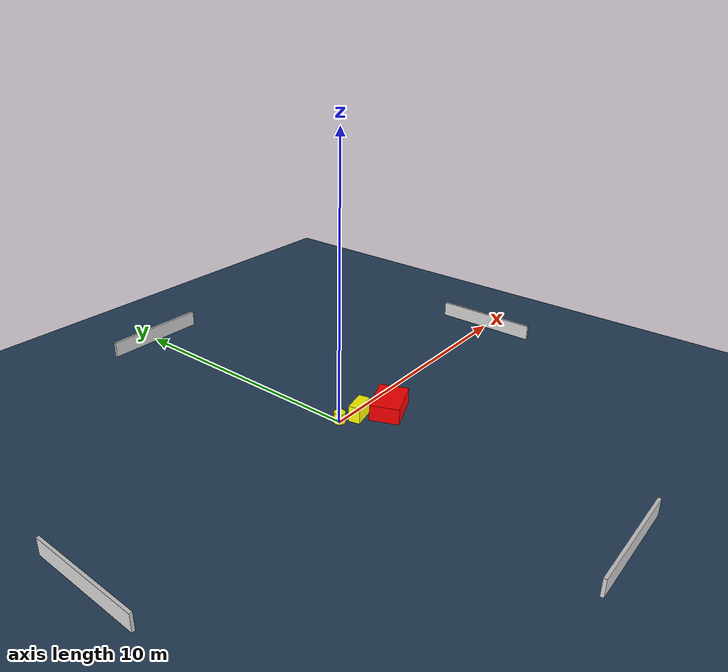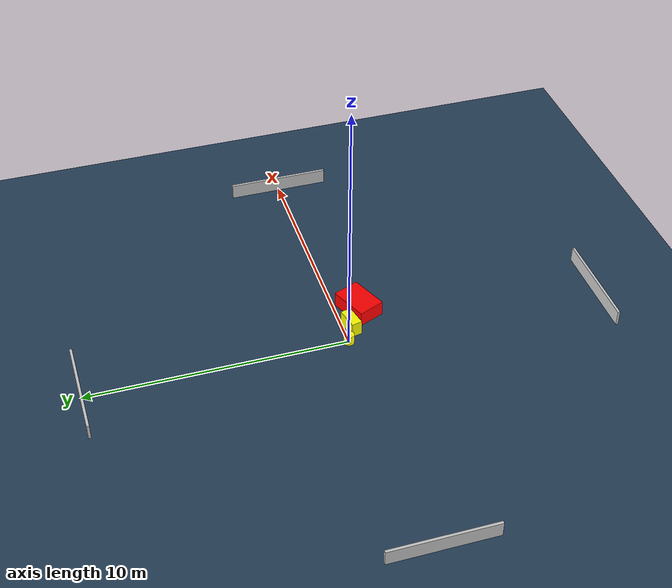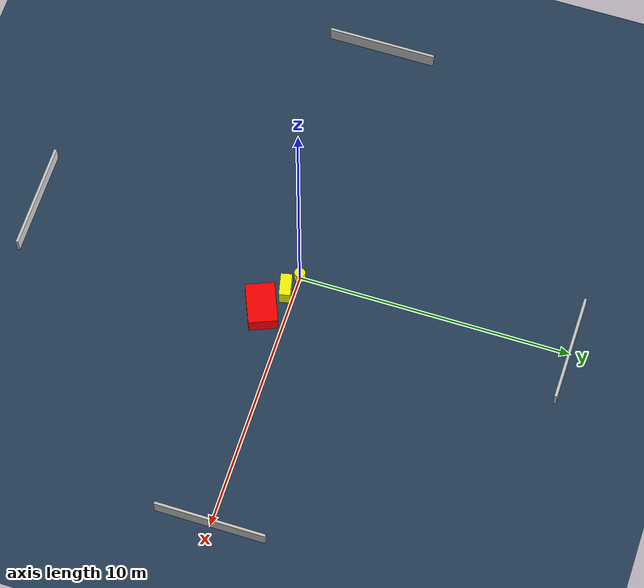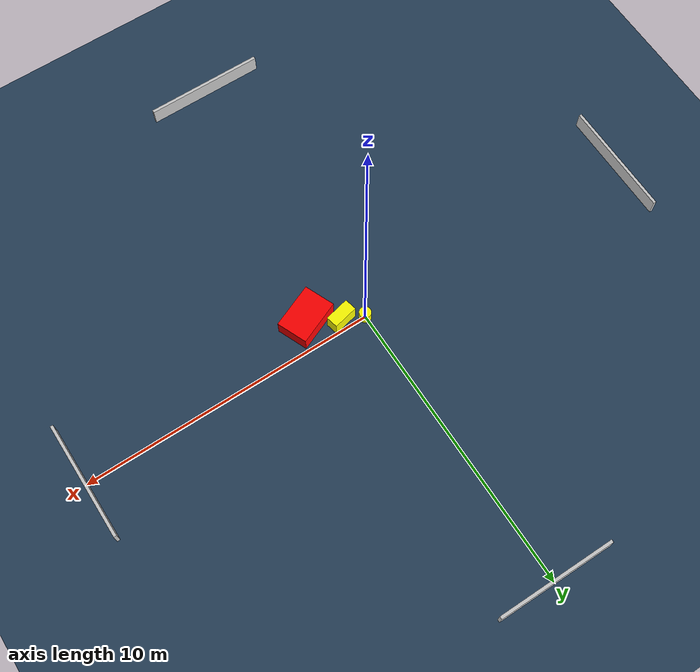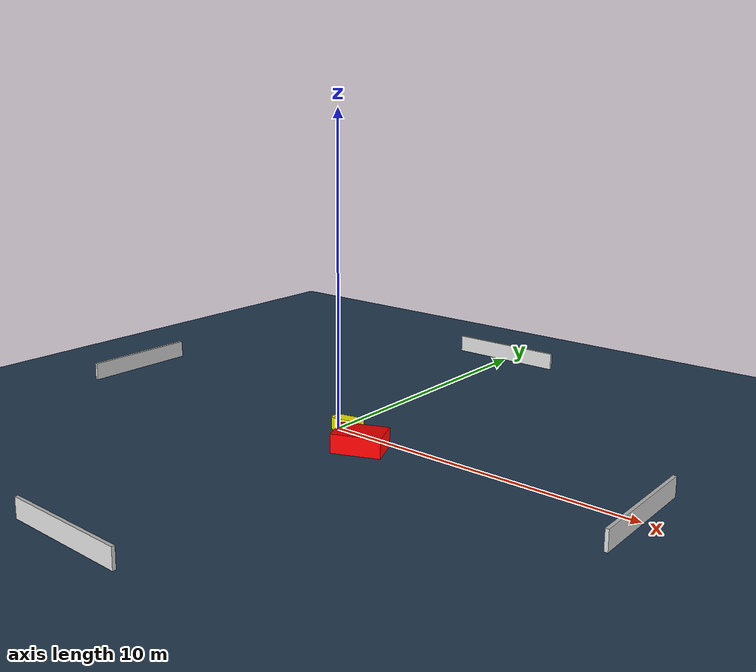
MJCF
<?xml version="1.0" ?>
<mujoco model="generated_environment">
  <option timestep="0.01" integrator="RK4" cone="elliptic"/>
  <default>
    <geom density="1"/>
  </default>
  <asset>
    <texture builtin="gradient" height="3072" name="skybox" rgb1="0.3 0.5 0.7" rgb2="0 0 0" type="skybox" width="512"/>
    <texture builtin="checker" height="300" name="groundplane" rgb1="0.2 0.3 0.4" rgb2="0.1 0.2 0.3" type="2d" width="300"/>
    <material name="groundplane" reflectance="0.2" texrepeat="5 5" texture="groundplane"/>
  </asset>
  <worldbody>
    <light dir="0 0 -1" directional="true" pos="0 0 1.5"/>
    <geom condim="3" friction="0.5 0.005 0.001" material="groundplane" name="floor" pos="0 0 0" size="0 0 0.05" type="plane"/>
    <body name="walls">
      <geom name="wall_1" condim="4" pos="-10.0 0.0 0.3" rgba="0.800000011920929 0.800000011920929 0.800000011920929 1.0" size="0.05 2.0 0.3" type="box"/>
      <geom name="wall_2" condim="4" pos="10.0 0.0 0.3" rgba="0.800000011920929 0.800000011920929 0.800000011920929 1.0" size="0.05 2.0 0.3" type="box"/>
      <geom name="wall_3" condim="4" pos="0.0 -10.0 0.3" rgba="0.800000011920929 0.800000011920929 0.800000011920929 1.0" size="2.0 0.05 0.3" type="box"/>
      <geom name="wall_4" condim="4" pos="0.0 10.0 0.3" rgba="0.800000011920929 0.800000011920929 0.800000011920929 1.0" size="2.0 0.05 0.3" type="box"/>
    </body>
    <body name="robot">
      <joint name="joint_x" type="slide" pos="0 0 0" axis="1 0 0"/>
      <joint name="joint_y" type="slide" pos="0 0 0" axis="0 1 0"/>
      <geom name="robot" type="cylinder" pos="0.0 0.0 0.2" size="0.2 0.2 0.0" mass="5.0" friction="1.0 0.005 0.0001" condim="4" rgba="1.0 1.0 0.0 1.0"/>
    </body>
    <body name="obstacle_1_movable">
      <geom name="obstacle_1_movable" condim="4" pos="0.6952614151063321 -0.31156516040317644 0.3" euler="0 0 12.695449777661828" friction="0.0 0.005 0.001" rgba="1.0 1.0 0.0 1.0" size="0.4255816806110886 0.20588021295681155 0.3" type="box" mass="0.1"/>
      <joint type="free"/>
    </body>
    <body name="obstacle_2_static">
      <geom name="obstacle_2_static" condim="4" pos="1.6407325326297804 -0.9026004508738315 0.3" euler="0 0 112.84779536553111" friction="0.0 0.005 0.001" rgba="1.0 0.0 0.0 1.0" size="0.5308941027034919 0.767262575707399 0.3" type="box"/>
    </body>
  </worldbody>
  <actuator>
    <motor name="actuator_x" joint="joint_x" gear="1" ctrlrange="-1 1"/>
    <motor name="actuator_y" joint="joint_y" gear="1" ctrlrange="-1 1"/>
  </actuator>
</mujoco>
